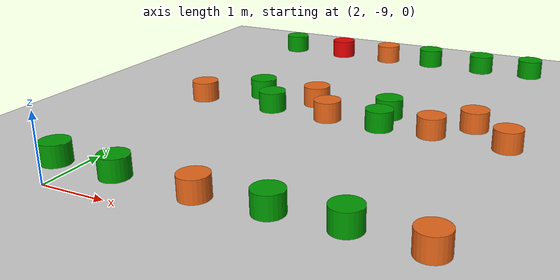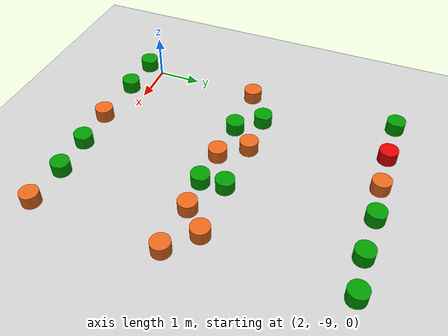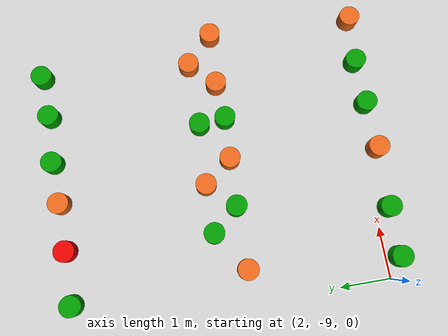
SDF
<sdf version="1.7">
 <world name="default">
  <model name="ground_plane">
   <static>1</static>
   <link name="link">
    <collision name="collision">
     <geometry><plane><normal>0 0 1</normal><size>100 100</size></plane></geometry>
     <surface>
      <contact><collide_bitmask>65535</collide_bitmask></contact>
      <friction><ode><mu>100</mu><mu2>50</mu2></ode></friction>
     </surface>
    </collision>
    <visual name="visual">
     <cast_shadows>0</cast_shadows>
     <geometry><plane><normal>0 0 1</normal><size>100 100</size></plane></geometry>
     <material>
      <script><uri>file://media/materials/scripts/gazebo.material</uri><name>Gazebo/Grey</name></script>
     </material>
    </visual>
   </link>
  </model>
  <model name="Test_pot_red">
   <link name="link_0">
    <inertial>
     <mass>0.044841</mass>
     <inertia>
      <ixx>0.00074807</ixx>
      <ixy>0</ixy>
      <ixz>0</ixz>
      <iyy>0.00074807</iyy>
      <iyz>0</iyz>
      <izz>0.00086495</izz>
     </inertia>
    </inertial>
    <pose>3e-06 1e-06 -0 0 -0 0</pose>
    <visual name="visual">
     <geometry><cylinder><radius>0.196415</radius><length>0.290612</length></cylinder></geometry>
     <material>
      <lighting>1</lighting>
      <script><uri>file://media/materials/scripts/gazebo.material</uri><name>Gazebo/Grey</name></script>
      <shader type="pixel"><normal_map>__default__</normal_map></shader>
      <ambient>0.3 0.3 0.3 1</ambient>
      <diffuse>0.9 0 0 1</diffuse>
      <specular>0.01 0.01 0.01 1</specular>
      <emissive>0 0 0 1</emissive>
     </material>
    </visual>
    <collision name="collision">
     <geometry><cylinder><radius>0.196415</radius><length>0.290612</length></cylinder></geometry>
     <surface>
      <friction>
       <ode><mu>1</mu><mu2>1</mu2><fdir1>0 0 0</fdir1><slip1>0</slip1><slip2>0</slip2></ode>
       <torsional>
        <coefficient>1</coefficient>
        <patch_radius>0</patch_radius>
        <surface_radius>0</surface_radius>
        <use_patch_radius>1</use_patch_radius>
        <ode><slip>0</slip></ode>
       </torsional>
      </friction>
      <bounce><restitution_coefficient>0</restitution_coefficient><threshold>1e+06</threshold></bounce>
      <contact>
       <collide_without_contact>0</collide_without_contact>
       <collide_without_contact_bitmask>1</collide_without_contact_bitmask>
       <collide_bitmask>1</collide_bitmask>
       <ode>
        <soft_cfm>0</soft_cfm>
        <soft_erp>0.2</soft_erp>
        <kp>1e+13</kp>
        <kd>1</kd>
        <max_vel>0.01</max_vel>
        <min_depth>0</min_depth>
       </ode>
       <bullet>
        <split_impulse>1</split_impulse>
        <split_impulse_penetration_threshold>-0.01</split_impulse_penetration_threshold>
        <soft_cfm>0</soft_cfm>
        <soft_erp>0.2</soft_erp>
        <kp>1e+13</kp>
        <kd>1</kd>
       </bullet>
      </contact>
     </surface>
    </collision>
   </link>
   <static>0</static>
   <pose>3.5117 -3.04366 0.575586 3.8e-05 1e-06 -0.000459</pose>
  </model>
  <model name="Test_pot_orange_clone_4">
   <link name="link_0">
    <inertial>
     <mass>0.044841</mass>
     <inertia>
      <ixx>0.00074807</ixx>
      <ixy>0</ixy>
      <ixz>0</ixz>
      <iyy>0.00074807</iyy>
      <iyz>0</iyz>
      <izz>0.00086495</izz>
     </inertia>
    </inertial>
    <pose>3e-06 1e-06 -0 0 -0 0</pose>
    <visual name="visual">
     <geometry><cylinder><radius>0.196415</radius><length>0.290612</length></cylinder></geometry>
     <material>
      <lighting>1</lighting>
      <script><uri>file://media/materials/scripts/gazebo.material</uri><name>Gazebo/Grey</name></script>
      <shader type="pixel"><normal_map>__default__</normal_map></shader>
      <ambient>0.3 0.3 0.3 1</ambient>
      <diffuse>0.9 0.4 0.1 1</diffuse>
      <specular>0.01 0.01 0.01 1</specular>
      <emissive>0 0 0 1</emissive>
     </material>
    </visual>
    <collision name="collision">
     <geometry><cylinder><radius>0.196415</radius><length>0.290612</length></cylinder></geometry>
     <surface>
      <friction>
       <ode><mu>1</mu><mu2>1</mu2><fdir1>0 0 0</fdir1><slip1>0</slip1><slip2>0</slip2></ode>
       <torsional>
        <coefficient>1</coefficient>
        <patch_radius>0</patch_radius>
        <surface_radius>0</surface_radius>
        <use_patch_radius>1</use_patch_radius>
        <ode><slip>0</slip></ode>
       </torsional>
      </friction>
      <bounce><restitution_coefficient>0</restitution_coefficient><threshold>1e+06</threshold></bounce>
      <contact>
       <collide_without_contact>0</collide_without_contact>
       <collide_without_contact_bitmask>1</collide_without_contact_bitmask>
       <collide_bitmask>1</collide_bitmask>
       <ode>
        <soft_cfm>0</soft_cfm>
        <soft_erp>0.2</soft_erp>
        <kp>1e+13</kp>
        <kd>1</kd>
        <max_vel>0.01</max_vel>
        <min_depth>0</min_depth>
       </ode>
       <bullet>
        <split_impulse>1</split_impulse>
        <split_impulse_penetration_threshold>-0.01</split_impulse_penetration_threshold>
        <soft_cfm>0</soft_cfm>
        <soft_erp>0.2</soft_erp>
        <kp>1e+13</kp>
        <kd>1</kd>
       </bullet>
      </contact>
     </surface>
    </collision>
   </link>
   <static>0</static>
   <pose>4.4015 -3.02692 0.575586 3.8e-05 1e-06 -0.000459</pose>
  </model>
  <model name="Test_pot_orange_clone_6">
   <link name="link_0">
    <inertial>
     <mass>0.044841</mass>
     <inertia>
      <ixx>0.00074807</ixx>
      <ixy>0</ixy>
      <ixz>0</ixz>
      <iyy>0.00074807</iyy>
      <iyz>0</iyz>
      <izz>0.00086495</izz>
     </inertia>
    </inertial>
    <pose>3e-06 1e-06 -0 0 -0 0</pose>
    <visual name="visual">
     <geometry><cylinder><radius>0.196415</radius><length>0.290612</length></cylinder></geometry>
     <material>
      <lighting>1</lighting>
      <script><uri>file://media/materials/scripts/gazebo.material</uri><name>Gazebo/Grey</name></script>
      <shader type="pixel"><normal_map>__default__</normal_map></shader>
      <ambient>0.3 0.3 0.3 1</ambient>
      <diffuse>0.9 0.4 0.1 1</diffuse>
      <specular>0.01 0.01 0.01 1</specular>
      <emissive>0 0 0 1</emissive>
     </material>
    </visual>
    <collision name="collision">
     <geometry><cylinder><radius>0.196415</radius><length>0.290612</length></cylinder></geometry>
     <surface>
      <friction>
       <ode><mu>1</mu><mu2>1</mu2><fdir1>0 0 0</fdir1><slip1>0</slip1><slip2>0</slip2></ode>
       <torsional>
        <coefficient>1</coefficient>
        <patch_radius>0</patch_radius>
        <surface_radius>0</surface_radius>
        <use_patch_radius>1</use_patch_radius>
        <ode><slip>0</slip></ode>
       </torsional>
      </friction>
      <bounce><restitution_coefficient>0</restitution_coefficient><threshold>1e+06</threshold></bounce>
      <contact>
       <collide_without_contact>0</collide_without_contact>
       <collide_without_contact_bitmask>1</collide_without_contact_bitmask>
       <collide_bitmask>1</collide_bitmask>
       <ode>
        <soft_cfm>0</soft_cfm>
        <soft_erp>0.2</soft_erp>
        <kp>1e+13</kp>
        <kd>1</kd>
        <max_vel>0.01</max_vel>
        <min_depth>0</min_depth>
       </ode>
       <bullet>
        <split_impulse>1</split_impulse>
        <split_impulse_penetration_threshold>-0.01</split_impulse_penetration_threshold>
        <soft_cfm>0</soft_cfm>
        <soft_erp>0.2</soft_erp>
        <kp>1e+13</kp>
        <kd>1</kd>
       </bullet>
      </contact>
     </surface>
    </collision>
   </link>
   <static>0</static>
   <pose>4.48693 -9.13712 0.575586 3.8e-05 1e-06 -0.000459</pose>
  </model>
  <model name="Test_pot_orange_clone_7">
   <link name="link_0">
    <inertial>
     <mass>0.044841</mass>
     <inertia>
      <ixx>0.00074807</ixx>
      <ixy>0</ixy>
      <ixz>0</ixz>
      <iyy>0.00074807</iyy>
      <iyz>0</iyz>
      <izz>0.00086495</izz>
     </inertia>
    </inertial>
    <pose>3e-06 1e-06 -0 0 -0 0</pose>
    <visual name="visual">
     <geometry><cylinder><radius>0.196415</radius><length>0.290612</length></cylinder></geometry>
     <material>
      <lighting>1</lighting>
      <script><uri>file://media/materials/scripts/gazebo.material</uri><name>Gazebo/Grey</name></script>
      <shader type="pixel"><normal_map>__default__</normal_map></shader>
      <ambient>0.3 0.3 0.3 1</ambient>
      <diffuse>0.9 0.4 0.1 1</diffuse>
      <specular>0.01 0.01 0.01 1</specular>
      <emissive>0 0 0 1</emissive>
     </material>
    </visual>
    <collision name="collision">
     <geometry><cylinder><radius>0.196415</radius><length>0.290612</length></cylinder></geometry>
     <surface>
      <friction>
       <ode><mu>1</mu><mu2>1</mu2><fdir1>0 0 0</fdir1><slip1>0</slip1><slip2>0</slip2></ode>
       <torsional>
        <coefficient>1</coefficient>
        <patch_radius>0</patch_radius>
        <surface_radius>0</surface_radius>
        <use_patch_radius>1</use_patch_radius>
        <ode><slip>0</slip></ode>
       </torsional>
      </friction>
      <bounce><restitution_coefficient>0</restitution_coefficient><threshold>1e+06</threshold></bounce>
      <contact>
       <collide_without_contact>0</collide_without_contact>
       <collide_without_contact_bitmask>1</collide_without_contact_bitmask>
       <collide_bitmask>1</collide_bitmask>
       <ode>
        <soft_cfm>0</soft_cfm>
        <soft_erp>0.2</soft_erp>
        <kp>1e+13</kp>
        <kd>1</kd>
        <max_vel>0.01</max_vel>
        <min_depth>0</min_depth>
       </ode>
       <bullet>
        <split_impulse>1</split_impulse>
        <split_impulse_penetration_threshold>-0.01</split_impulse_penetration_threshold>
        <soft_cfm>0</soft_cfm>
        <soft_erp>0.2</soft_erp>
        <kp>1e+13</kp>
        <kd>1</kd>
       </bullet>
      </contact>
     </surface>
    </collision>
   </link>
   <static>0</static>
   <pose>7.17621 -9.14948 0.575586 3.8e-05 1e-06 -0.000459</pose>
  </model>
  <model name="Test_pot_orange_clone_9">
   <link name="link_0">
    <inertial>
     <mass>0.044841</mass>
     <inertia>
      <ixx>0.00074807</ixx>
      <ixy>0</ixy>
      <ixz>0</ixz>
      <iyy>0.00074807</iyy>
      <iyz>0</iyz>
      <izz>0.00086495</izz>
     </inertia>
    </inertial>
    <pose>3e-06 1e-06 -0 0 -0 0</pose>
    <visual name="visual">
     <geometry><cylinder><radius>0.196415</radius><length>0.290612</length></cylinder></geometry>
     <material>
      <lighting>1</lighting>
      <script><uri>file://media/materials/scripts/gazebo.material</uri><name>Gazebo/Grey</name></script>
      <shader type="pixel"><normal_map>__default__</normal_map></shader>
      <ambient>0.3 0.3 0.3 1</ambient>
      <diffuse>0.9 0.4 0.1 1</diffuse>
      <specular>0.01 0.01 0.01 1</specular>
      <emissive>0 0 0 1</emissive>
     </material>
    </visual>
    <collision name="collision">
     <geometry><cylinder><radius>0.196415</radius><length>0.290612</length></cylinder></geometry>
     <surface>
      <friction>
       <ode><mu>1</mu><mu2>1</mu2><fdir1>0 0 0</fdir1><slip1>0</slip1><slip2>0</slip2></ode>
       <torsional>
        <coefficient>1</coefficient>
        <patch_radius>0</patch_radius>
        <surface_radius>0</surface_radius>
        <use_patch_radius>1</use_patch_radius>
        <ode><slip>0</slip></ode>
       </torsional>
      </friction>
      <bounce><restitution_coefficient>0</restitution_coefficient><threshold>1e+06</threshold></bounce>
      <contact>
       <collide_without_contact>0</collide_without_contact>
       <collide_without_contact_bitmask>1</collide_without_contact_bitmask>
       <collide_bitmask>1</collide_bitmask>
       <ode>
        <soft_cfm>0</soft_cfm>
        <soft_erp>0.2</soft_erp>
        <kp>1e+13</kp>
        <kd>1</kd>
        <max_vel>0.01</max_vel>
        <min_depth>0</min_depth>
       </ode>
       <bullet>
        <split_impulse>1</split_impulse>
        <split_impulse_penetration_threshold>-0.01</split_impulse_penetration_threshold>
        <soft_cfm>0</soft_cfm>
        <soft_erp>0.2</soft_erp>
        <kp>1e+13</kp>
        <kd>1</kd>
       </bullet>
      </contact>
     </surface>
    </collision>
   </link>
   <static>0</static>
   <pose>2.64433 -6.28889 0.575586 3.8e-05 1e-06 -0.000459</pose>
  </model>
  <model name="Test_pot_orange_clone_10">
   <link name="link_0">
    <inertial>
     <mass>0.044841</mass>
     <inertia>
      <ixx>0.00074807</ixx>
      <ixy>0</ixy>
      <ixz>0</ixz>
      <iyy>0.00074807</iyy>
      <iyz>0</iyz>
      <izz>0.00086495</izz>
     </inertia>
    </inertial>
    <pose>3e-06 1e-06 -0 0 -0 0</pose>
    <visual name="visual">
     <geometry><cylinder><radius>0.196415</radius><length>0.290612</length></cylinder></geometry>
     <material>
      <lighting>1</lighting>
      <script><uri>file://media/materials/scripts/gazebo.material</uri><name>Gazebo/Grey</name></script>
      <shader type="pixel"><normal_map>__default__</normal_map></shader>
      <ambient>0.3 0.3 0.3 1</ambient>
      <diffuse>0.9 0.4 0.1 1</diffuse>
      <specular>0.01 0.01 0.01 1</specular>
      <emissive>0 0 0 1</emissive>
     </material>
    </visual>
    <collision name="collision">
     <geometry><cylinder><radius>0.196415</radius><length>0.290612</length></cylinder></geometry>
     <surface>
      <friction>
       <ode><mu>1</mu><mu2>1</mu2><fdir1>0 0 0</fdir1><slip1>0</slip1><slip2>0</slip2></ode>
       <torsional>
        <coefficient>1</coefficient>
        <patch_radius>0</patch_radius>
        <surface_radius>0</surface_radius>
        <use_patch_radius>1</use_patch_radius>
        <ode><slip>0</slip></ode>
       </torsional>
      </friction>
      <bounce><restitution_coefficient>0</restitution_coefficient><threshold>1e+06</threshold></bounce>
      <contact>
       <collide_without_contact>0</collide_without_contact>
       <collide_without_contact_bitmask>1</collide_without_contact_bitmask>
       <collide_bitmask>1</collide_bitmask>
       <ode>
        <soft_cfm>0</soft_cfm>
        <soft_erp>0.2</soft_erp>
        <kp>1e+13</kp>
        <kd>1</kd>
        <max_vel>0.01</max_vel>
        <min_depth>0</min_depth>
       </ode>
       <bullet>
        <split_impulse>1</split_impulse>
        <split_impulse_penetration_threshold>-0.01</split_impulse_penetration_threshold>
        <soft_cfm>0</soft_cfm>
        <soft_erp>0.2</soft_erp>
        <kp>1e+13</kp>
        <kd>1</kd>
       </bullet>
      </contact>
     </surface>
    </collision>
   </link>
   <static>0</static>
   <pose>4.30582 -5.78421 0.575586 3.8e-05 1e-06 -0.000459</pose>
  </model>
  <model name="Test_pot_orange_clone_11">
   <link name="link_0">
    <inertial>
     <mass>0.044841</mass>
     <inertia>
      <ixx>0.00074807</ixx>
      <ixy>0</ixy>
      <ixz>0</ixz>
      <iyy>0.00074807</iyy>
      <iyz>0</iyz>
      <izz>0.00086495</izz>
     </inertia>
    </inertial>
    <pose>3e-06 1e-06 -0 0 -0 0</pose>
    <visual name="visual">
     <geometry><cylinder><radius>0.196415</radius><length>0.290612</length></cylinder></geometry>
     <material>
      <lighting>1</lighting>
      <script><uri>file://media/materials/scripts/gazebo.material</uri><name>Gazebo/Grey</name></script>
      <shader type="pixel"><normal_map>__default__</normal_map></shader>
      <ambient>0.3 0.3 0.3 1</ambient>
      <diffuse>0.9 0.4 0.1 1</diffuse>
      <specular>0.01 0.01 0.01 1</specular>
      <emissive>0 0 0 1</emissive>
     </material>
    </visual>
    <collision name="collision">
     <geometry><cylinder><radius>0.196415</radius><length>0.290612</length></cylinder></geometry>
     <surface>
      <friction>
       <ode><mu>1</mu><mu2>1</mu2><fdir1>0 0 0</fdir1><slip1>0</slip1><slip2>0</slip2></ode>
       <torsional>
        <coefficient>1</coefficient>
        <patch_radius>0</patch_radius>
        <surface_radius>0</surface_radius>
        <use_patch_radius>1</use_patch_radius>
        <ode><slip>0</slip></ode>
       </torsional>
      </friction>
      <bounce><restitution_coefficient>0</restitution_coefficient><threshold>1e+06</threshold></bounce>
      <contact>
       <collide_without_contact>0</collide_without_contact>
       <collide_without_contact_bitmask>1</collide_without_contact_bitmask>
       <collide_bitmask>1</collide_bitmask>
       <ode>
        <soft_cfm>0</soft_cfm>
        <soft_erp>0.2</soft_erp>
        <kp>1e+13</kp>
        <kd>1</kd>
        <max_vel>0.01</max_vel>
        <min_depth>0</min_depth>
       </ode>
       <bullet>
        <split_impulse>1</split_impulse>
        <split_impulse_penetration_threshold>-0.01</split_impulse_penetration_threshold>
        <soft_cfm>0</soft_cfm>
        <soft_erp>0.2</soft_erp>
        <kp>1e+13</kp>
        <kd>1</kd>
       </bullet>
      </contact>
     </surface>
    </collision>
   </link>
   <static>0</static>
   <pose>4.73132 -6.31089 0.575586 3.8e-05 1e-06 -0.000459</pose>
  </model>
  <model name="Test_pot_orange_clone_12">
   <link name="link_0">
    <inertial>
     <mass>0.044841</mass>
     <inertia>
      <ixx>0.00074807</ixx>
      <ixy>0</ixy>
      <ixz>0</ixz>
      <iyy>0.00074807</iyy>
      <iyz>0</iyz>
      <izz>0.00086495</izz>
     </inertia>
    </inertial>
    <pose>3e-06 1e-06 -0 0 -0 0</pose>
    <visual name="visual">
     <geometry><cylinder><radius>0.196415</radius><length>0.290612</length></cylinder></geometry>
     <material>
      <lighting>1</lighting>
      <script><uri>file://media/materials/scripts/gazebo.material</uri><name>Gazebo/Grey</name></script>
      <shader type="pixel"><normal_map>__default__</normal_map></shader>
      <ambient>0.3 0.3 0.3 1</ambient>
      <diffuse>0.9 0.4 0.1 1</diffuse>
      <specular>0.01 0.01 0.01 1</specular>
      <emissive>0 0 0 1</emissive>
     </material>
    </visual>
    <collision name="collision">
     <geometry><cylinder><radius>0.196415</radius><length>0.290612</length></cylinder></geometry>
     <surface>
      <friction>
       <ode><mu>1</mu><mu2>1</mu2><fdir1>0 0 0</fdir1><slip1>0</slip1><slip2>0</slip2></ode>
       <torsional>
        <coefficient>1</coefficient>
        <patch_radius>0</patch_radius>
        <surface_radius>0</surface_radius>
        <use_patch_radius>1</use_patch_radius>
        <ode><slip>0</slip></ode>
       </torsional>
      </friction>
      <bounce><restitution_coefficient>0</restitution_coefficient><threshold>1e+06</threshold></bounce>
      <contact>
       <collide_without_contact>0</collide_without_contact>
       <collide_without_contact_bitmask>1</collide_without_contact_bitmask>
       <collide_bitmask>1</collide_bitmask>
       <ode>
        <soft_cfm>0</soft_cfm>
        <soft_erp>0.2</soft_erp>
        <kp>1e+13</kp>
        <kd>1</kd>
        <max_vel>0.01</max_vel>
        <min_depth>0</min_depth>
       </ode>
       <bullet>
        <split_impulse>1</split_impulse>
        <split_impulse_penetration_threshold>-0.01</split_impulse_penetration_threshold>
        <soft_cfm>0</soft_cfm>
        <soft_erp>0.2</soft_erp>
        <kp>1e+13</kp>
        <kd>1</kd>
       </bullet>
      </contact>
     </surface>
    </collision>
   </link>
   <static>0</static>
   <pose>6.71885 -5.82743 0.575586 3.8e-05 1e-06 -0.000459</pose>
  </model>
  <model name="Test_pot_orange_clone_13">
   <link name="link_0">
    <inertial>
     <mass>0.044841</mass>
     <inertia>
      <ixx>0.00074807</ixx>
      <ixy>0</ixy>
      <ixz>0</ixz>
      <iyy>0.00074807</iyy>
      <iyz>0</iyz>
      <izz>0.00086495</izz>
     </inertia>
    </inertial>
    <pose>3e-06 1e-06 -0 0 -0 0</pose>
    <visual name="visual">
     <geometry><cylinder><radius>0.196415</radius><length>0.290612</length></cylinder></geometry>
     <material>
      <lighting>1</lighting>
      <script><uri>file://media/materials/scripts/gazebo.material</uri><name>Gazebo/Grey</name></script>
      <shader type="pixel"><normal_map>__default__</normal_map></shader>
      <ambient>0.3 0.3 0.3 1</ambient>
      <diffuse>0.9 0.4 0.1 1</diffuse>
      <specular>0.01 0.01 0.01 1</specular>
      <emissive>0 0 0 1</emissive>
     </material>
    </visual>
    <collision name="collision">
     <geometry><cylinder><radius>0.196415</radius><length>0.290612</length></cylinder></geometry>
     <surface>
      <friction>
       <ode><mu>1</mu><mu2>1</mu2><fdir1>0 0 0</fdir1><slip1>0</slip1><slip2>0</slip2></ode>
       <torsional>
        <coefficient>1</coefficient>
        <patch_radius>0</patch_radius>
        <surface_radius>0</surface_radius>
        <use_patch_radius>1</use_patch_radius>
        <ode><slip>0</slip></ode>
       </torsional>
      </friction>
      <bounce><restitution_coefficient>0</restitution_coefficient><threshold>1e+06</threshold></bounce>
      <contact>
       <collide_without_contact>0</collide_without_contact>
       <collide_without_contact_bitmask>1</collide_without_contact_bitmask>
       <collide_bitmask>1</collide_bitmask>
       <ode>
        <soft_cfm>0</soft_cfm>
        <soft_erp>0.2</soft_erp>
        <kp>1e+13</kp>
        <kd>1</kd>
        <max_vel>0.01</max_vel>
        <min_depth>0</min_depth>
       </ode>
       <bullet>
        <split_impulse>1</split_impulse>
        <split_impulse_penetration_threshold>-0.01</split_impulse_penetration_threshold>
        <soft_cfm>0</soft_cfm>
        <soft_erp>0.2</soft_erp>
        <kp>1e+13</kp>
        <kd>1</kd>
       </bullet>
      </contact>
     </surface>
    </collision>
   </link>
   <static>0</static>
   <pose>6.25189 -6.29243 0.575586 3.8e-05 1e-06 -0.000459</pose>
  </model>
  <model name="Test_pot_orange_clone_14">
   <link name="link_0">
    <inertial>
     <mass>0.044841</mass>
     <inertia>
      <ixx>0.00074807</ixx>
      <ixy>0</ixy>
      <ixz>0</ixz>
      <iyy>0.00074807</iyy>
      <iyz>0</iyz>
      <izz>0.00086495</izz>
     </inertia>
    </inertial>
    <pose>3e-06 1e-06 -0 0 -0 0</pose>
    <visual name="visual">
     <geometry><cylinder><radius>0.196415</radius><length>0.290612</length></cylinder></geometry>
     <material>
      <lighting>1</lighting>
      <script><uri>file://media/materials/scripts/gazebo.material</uri><name>Gazebo/Grey</name></script>
      <shader type="pixel"><normal_map>__default__</normal_map></shader>
      <ambient>0.3 0.3 0.3 1</ambient>
      <diffuse>0.9 0.4 0.1 1</diffuse>
      <specular>0.01 0.01 0.01 1</specular>
      <emissive>0 0 0 1</emissive>
     </material>
    </visual>
    <collision name="collision">
     <geometry><cylinder><radius>0.196415</radius><length>0.290612</length></cylinder></geometry>
     <surface>
      <friction>
       <ode><mu>1</mu><mu2>1</mu2><fdir1>0 0 0</fdir1><slip1>0</slip1><slip2>0</slip2></ode>
       <torsional>
        <coefficient>1</coefficient>
        <patch_radius>0</patch_radius>
        <surface_radius>0</surface_radius>
        <use_patch_radius>1</use_patch_radius>
        <ode><slip>0</slip></ode>
       </torsional>
      </friction>
      <bounce><restitution_coefficient>0</restitution_coefficient><threshold>1e+06</threshold></bounce>
      <contact>
       <collide_without_contact>0</collide_without_contact>
       <collide_without_contact_bitmask>1</collide_without_contact_bitmask>
       <collide_bitmask>1</collide_bitmask>
       <ode>
        <soft_cfm>0</soft_cfm>
        <soft_erp>0.2</soft_erp>
        <kp>1e+13</kp>
        <kd>1</kd>
        <max_vel>0.01</max_vel>
        <min_depth>0</min_depth>
       </ode>
       <bullet>
        <split_impulse>1</split_impulse>
        <split_impulse_penetration_threshold>-0.01</split_impulse_penetration_threshold>
        <soft_cfm>0</soft_cfm>
        <soft_erp>0.2</soft_erp>
        <kp>1e+13</kp>
        <kd>1</kd>
       </bullet>
      </contact>
     </surface>
    </collision>
   </link>
   <static>0</static>
   <pose>7.27485 -6.33813 0.575586 3.8e-05 1e-06 -0.000459</pose>
  </model>
  <model name="Test_pot_green_clone_26">
   <link name="link_0">
    <inertial>
     <mass>0.044841</mass>
     <inertia>
      <ixx>0.00074807</ixx>
      <ixy>0</ixy>
      <ixz>0</ixz>
      <iyy>0.00074807</iyy>
      <iyz>0</iyz>
      <izz>0.00086495</izz>
     </inertia>
    </inertial>
    <pose>3e-06 1e-06 0 0 -0 0</pose>
    <visual name="visual">
     <geometry><cylinder><radius>0.196415</radius><length>0.290612</length></cylinder></geometry>
     <material>
      <lighting>1</lighting>
      <script><uri>file://media/materials/scripts/gazebo.material</uri><name>Gazebo/Grey</name></script>
      <shader type="pixel"><normal_map>__default__</normal_map></shader>
      <diffuse>0 0.6 0 0</diffuse>
      <ambient>0.3 0.3 0.3 1</ambient>
      <specular>0.01 0.01 0.01 1</specular>
      <emissive>0 0 0 1</emissive>
     </material>
    </visual>
    <collision name="collision">
     <geometry><cylinder><radius>0.196415</radius><length>0.290612</length></cylinder></geometry>
     <surface>
      <friction>
       <ode><mu>1</mu><mu2>1</mu2><fdir1>0 0 0</fdir1><slip1>0</slip1><slip2>0</slip2></ode>
       <torsional>
        <coefficient>1</coefficient>
        <patch_radius>0</patch_radius>
        <surface_radius>0</surface_radius>
        <use_patch_radius>1</use_patch_radius>
        <ode><slip>0</slip></ode>
       </torsional>
      </friction>
      <bounce><restitution_coefficient>0</restitution_coefficient><threshold>1e+06</threshold></bounce>
      <contact>
       <collide_without_contact>0</collide_without_contact>
       <collide_without_contact_bitmask>1</collide_without_contact_bitmask>
       <collide_bitmask>1</collide_bitmask>
       <ode>
        <soft_cfm>0</soft_cfm>
        <soft_erp>0.2</soft_erp>
        <kp>1e+13</kp>
        <kd>1</kd>
        <max_vel>0.01</max_vel>
        <min_depth>0</min_depth>
       </ode>
       <bullet>
        <split_impulse>1</split_impulse>
        <split_impulse_penetration_threshold>-0.01</split_impulse_penetration_threshold>
        <soft_cfm>0</soft_cfm>
        <soft_erp>0.2</soft_erp>
        <kp>1e+13</kp>
        <kd>1</kd>
       </bullet>
      </contact>
     </surface>
    </collision>
   </link>
   <static>0</static>
   <pose>2.53724 -3.04907 0.575588 1e-06 6e-06 -0.000489</pose>
  </model>
  <model name="Test_pot_green_clone_27">
   <link name="link_0">
    <inertial>
     <mass>0.044841</mass>
     <inertia>
      <ixx>0.00074807</ixx>
      <ixy>0</ixy>
      <ixz>0</ixz>
      <iyy>0.00074807</iyy>
      <iyz>0</iyz>
      <izz>0.00086495</izz>
     </inertia>
    </inertial>
    <pose>3e-06 1e-06 0 0 -0 0</pose>
    <visual name="visual">
     <geometry><cylinder><radius>0.196415</radius><length>0.290612</length></cylinder></geometry>
     <material>
      <lighting>1</lighting>
      <script><uri>file://media/materials/scripts/gazebo.material</uri><name>Gazebo/Grey</name></script>
      <shader type="pixel"><normal_map>__default__</normal_map></shader>
      <diffuse>0 0.6 0 0</diffuse>
      <ambient>0.3 0.3 0.3 1</ambient>
      <specular>0.01 0.01 0.01 1</specular>
      <emissive>0 0 0 1</emissive>
     </material>
    </visual>
    <collision name="collision">
     <geometry><cylinder><radius>0.196415</radius><length>0.290612</length></cylinder></geometry>
     <surface>
      <friction>
       <ode><mu>1</mu><mu2>1</mu2><fdir1>0 0 0</fdir1><slip1>0</slip1><slip2>0</slip2></ode>
       <torsional>
        <coefficient>1</coefficient>
        <patch_radius>0</patch_radius>
        <surface_radius>0</surface_radius>
        <use_patch_radius>1</use_patch_radius>
        <ode><slip>0</slip></ode>
       </torsional>
      </friction>
      <bounce><restitution_coefficient>0</restitution_coefficient><threshold>1e+06</threshold></bounce>
      <contact>
       <collide_without_contact>0</collide_without_contact>
       <collide_without_contact_bitmask>1</collide_without_contact_bitmask>
       <collide_bitmask>1</collide_bitmask>
       <ode>
        <soft_cfm>0</soft_cfm>
        <soft_erp>0.2</soft_erp>
        <kp>1e+13</kp>
        <kd>1</kd>
        <max_vel>0.01</max_vel>
        <min_depth>0</min_depth>
       </ode>
       <bullet>
        <split_impulse>1</split_impulse>
        <split_impulse_penetration_threshold>-0.01</split_impulse_penetration_threshold>
        <soft_cfm>0</soft_cfm>
        <soft_erp>0.2</soft_erp>
        <kp>1e+13</kp>
        <kd>1</kd>
       </bullet>
      </contact>
     </surface>
    </collision>
   </link>
   <static>0</static>
   <pose>5.19314 -2.97922 0.575588 1e-06 6e-06 -0.000489</pose>
  </model>
  <model name="Test_pot_green_clone_28">
   <link name="link_0">
    <inertial>
     <mass>0.044841</mass>
     <inertia>
      <ixx>0.00074807</ixx>
      <ixy>0</ixy>
      <ixz>0</ixz>
      <iyy>0.00074807</iyy>
      <iyz>0</iyz>
      <izz>0.00086495</izz>
     </inertia>
    </inertial>
    <pose>3e-06 1e-06 0 0 -0 0</pose>
    <visual name="visual">
     <geometry><cylinder><radius>0.196415</radius><length>0.290612</length></cylinder></geometry>
     <material>
      <lighting>1</lighting>
      <script><uri>file://media/materials/scripts/gazebo.material</uri><name>Gazebo/Grey</name></script>
      <shader type="pixel"><normal_map>__default__</normal_map></shader>
      <diffuse>0 0.6 0 0</diffuse>
      <ambient>0.3 0.3 0.3 1</ambient>
      <specular>0.01 0.01 0.01 1</specular>
      <emissive>0 0 0 1</emissive>
     </material>
    </visual>
    <collision name="collision">
     <geometry><cylinder><radius>0.196415</radius><length>0.290612</length></cylinder></geometry>
     <surface>
      <friction>
       <ode><mu>1</mu><mu2>1</mu2><fdir1>0 0 0</fdir1><slip1>0</slip1><slip2>0</slip2></ode>
       <torsional>
        <coefficient>1</coefficient>
        <patch_radius>0</patch_radius>
        <surface_radius>0</surface_radius>
        <use_patch_radius>1</use_patch_radius>
        <ode><slip>0</slip></ode>
       </torsional>
      </friction>
      <bounce><restitution_coefficient>0</restitution_coefficient><threshold>1e+06</threshold></bounce>
      <contact>
       <collide_without_contact>0</collide_without_contact>
       <collide_without_contact_bitmask>1</collide_without_contact_bitmask>
       <collide_bitmask>1</collide_bitmask>
       <ode>
        <soft_cfm>0</soft_cfm>
        <soft_erp>0.2</soft_erp>
        <kp>1e+13</kp>
        <kd>1</kd>
        <max_vel>0.01</max_vel>
        <min_depth>0</min_depth>
       </ode>
       <bullet>
        <split_impulse>1</split_impulse>
        <split_impulse_penetration_threshold>-0.01</split_impulse_penetration_threshold>
        <soft_cfm>0</soft_cfm>
        <soft_erp>0.2</soft_erp>
        <kp>1e+13</kp>
        <kd>1</kd>
       </bullet>
      </contact>
     </surface>
    </collision>
   </link>
   <static>0</static>
   <pose>6.10973 -3.0085 0.575588 1e-06 6e-06 -0.000489</pose>
  </model>
  <model name="Test_pot_green_clone_29">
   <link name="link_0">
    <inertial>
     <mass>0.044841</mass>
     <inertia>
      <ixx>0.00074807</ixx>
      <ixy>0</ixy>
      <ixz>0</ixz>
      <iyy>0.00074807</iyy>
      <iyz>0</iyz>
      <izz>0.00086495</izz>
     </inertia>
    </inertial>
    <pose>3e-06 1e-06 0 0 -0 0</pose>
    <visual name="visual">
     <geometry><cylinder><radius>0.196415</radius><length>0.290612</length></cylinder></geometry>
     <material>
      <lighting>1</lighting>
      <script><uri>file://media/materials/scripts/gazebo.material</uri><name>Gazebo/Grey</name></script>
      <shader type="pixel"><normal_map>__default__</normal_map></shader>
      <diffuse>0 0.6 0 0</diffuse>
      <ambient>0.3 0.3 0.3 1</ambient>
      <specular>0.01 0.01 0.01 1</specular>
      <emissive>0 0 0 1</emissive>
     </material>
    </visual>
    <collision name="collision">
     <geometry><cylinder><radius>0.196415</radius><length>0.290612</length></cylinder></geometry>
     <surface>
      <friction>
       <ode><mu>1</mu><mu2>1</mu2><fdir1>0 0 0</fdir1><slip1>0</slip1><slip2>0</slip2></ode>
       <torsional>
        <coefficient>1</coefficient>
        <patch_radius>0</patch_radius>
        <surface_radius>0</surface_radius>
        <use_patch_radius>1</use_patch_radius>
        <ode><slip>0</slip></ode>
       </torsional>
      </friction>
      <bounce><restitution_coefficient>0</restitution_coefficient><threshold>1e+06</threshold></bounce>
      <contact>
       <collide_without_contact>0</collide_without_contact>
       <collide_without_contact_bitmask>1</collide_without_contact_bitmask>
       <collide_bitmask>1</collide_bitmask>
       <ode>
        <soft_cfm>0</soft_cfm>
        <soft_erp>0.2</soft_erp>
        <kp>1e+13</kp>
        <kd>1</kd>
        <max_vel>0.01</max_vel>
        <min_depth>0</min_depth>
       </ode>
       <bullet>
        <split_impulse>1</split_impulse>
        <split_impulse_penetration_threshold>-0.01</split_impulse_penetration_threshold>
        <soft_cfm>0</soft_cfm>
        <soft_erp>0.2</soft_erp>
        <kp>1e+13</kp>
        <kd>1</kd>
       </bullet>
      </contact>
     </surface>
    </collision>
   </link>
   <static>0</static>
   <pose>6.92926 -2.95845 0.575588 1e-06 6e-06 -0.000489</pose>
  </model>
  <model name="Test_pot_green_clone_30">
   <link name="link_0">
    <inertial>
     <mass>0.044841</mass>
     <inertia>
      <ixx>0.00074807</ixx>
      <ixy>0</ixy>
      <ixz>0</ixz>
      <iyy>0.00074807</iyy>
      <iyz>0</iyz>
      <izz>0.00086495</izz>
     </inertia>
    </inertial>
    <pose>3e-06 1e-06 0 0 -0 0</pose>
    <visual name="visual">
     <geometry><cylinder><radius>0.196415</radius><length>0.290612</length></cylinder></geometry>
     <material>
      <lighting>1</lighting>
      <script><uri>file://media/materials/scripts/gazebo.material</uri><name>Gazebo/Grey</name></script>
      <shader type="pixel"><normal_map>__default__</normal_map></shader>
      <diffuse>0 0.6 0 0</diffuse>
      <ambient>0.3 0.3 0.3 1</ambient>
      <specular>0.01 0.01 0.01 1</specular>
      <emissive>0 0 0 1</emissive>
     </material>
    </visual>
    <collision name="collision">
     <geometry><cylinder><radius>0.196415</radius><length>0.290612</length></cylinder></geometry>
     <surface>
      <friction>
       <ode><mu>1</mu><mu2>1</mu2><fdir1>0 0 0</fdir1><slip1>0</slip1><slip2>0</slip2></ode>
       <torsional>
        <coefficient>1</coefficient>
        <patch_radius>0</patch_radius>
        <surface_radius>0</surface_radius>
        <use_patch_radius>1</use_patch_radius>
        <ode><slip>0</slip></ode>
       </torsional>
      </friction>
      <bounce><restitution_coefficient>0</restitution_coefficient><threshold>1e+06</threshold></bounce>
      <contact>
       <collide_without_contact>0</collide_without_contact>
       <collide_without_contact_bitmask>1</collide_without_contact_bitmask>
       <collide_bitmask>1</collide_bitmask>
       <ode>
        <soft_cfm>0</soft_cfm>
        <soft_erp>0.2</soft_erp>
        <kp>1e+13</kp>
        <kd>1</kd>
        <max_vel>0.01</max_vel>
        <min_depth>0</min_depth>
       </ode>
       <bullet>
        <split_impulse>1</split_impulse>
        <split_impulse_penetration_threshold>-0.01</split_impulse_penetration_threshold>
        <soft_cfm>0</soft_cfm>
        <soft_erp>0.2</soft_erp>
        <kp>1e+13</kp>
        <kd>1</kd>
       </bullet>
      </contact>
     </surface>
    </collision>
   </link>
   <static>0</static>
   <pose>3.38621 -5.78933 0.575588 1e-06 6e-06 -0.000489</pose>
  </model>
  <model name="Test_pot_green_clone_31">
   <link name="link_0">
    <inertial>
     <mass>0.044841</mass>
     <inertia>
      <ixx>0.00074807</ixx>
      <ixy>0</ixy>
      <ixz>0</ixz>
      <iyy>0.00074807</iyy>
      <iyz>0</iyz>
      <izz>0.00086495</izz>
     </inertia>
    </inertial>
    <pose>3e-06 1e-06 0 0 -0 0</pose>
    <visual name="visual">
     <geometry><cylinder><radius>0.196415</radius><length>0.290612</length></cylinder></geometry>
     <material>
      <lighting>1</lighting>
      <script><uri>file://media/materials/scripts/gazebo.material</uri><name>Gazebo/Grey</name></script>
      <shader type="pixel"><normal_map>__default__</normal_map></shader>
      <diffuse>0 0.6 0 0</diffuse>
      <ambient>0.3 0.3 0.3 1</ambient>
      <specular>0.01 0.01 0.01 1</specular>
      <emissive>0 0 0 1</emissive>
     </material>
    </visual>
    <collision name="collision">
     <geometry><cylinder><radius>0.196415</radius><length>0.290612</length></cylinder></geometry>
     <surface>
      <friction>
       <ode><mu>1</mu><mu2>1</mu2><fdir1>0 0 0</fdir1><slip1>0</slip1><slip2>0</slip2></ode>
       <torsional>
        <coefficient>1</coefficient>
        <patch_radius>0</patch_radius>
        <surface_radius>0</surface_radius>
        <use_patch_radius>1</use_patch_radius>
        <ode><slip>0</slip></ode>
       </torsional>
      </friction>
      <bounce><restitution_coefficient>0</restitution_coefficient><threshold>1e+06</threshold></bounce>
      <contact>
       <collide_without_contact>0</collide_without_contact>
       <collide_without_contact_bitmask>1</collide_without_contact_bitmask>
       <collide_bitmask>1</collide_bitmask>
       <ode>
        <soft_cfm>0</soft_cfm>
        <soft_erp>0.2</soft_erp>
        <kp>1e+13</kp>
        <kd>1</kd>
        <max_vel>0.01</max_vel>
        <min_depth>0</min_depth>
       </ode>
       <bullet>
        <split_impulse>1</split_impulse>
        <split_impulse_penetration_threshold>-0.01</split_impulse_penetration_threshold>
        <soft_cfm>0</soft_cfm>
        <soft_erp>0.2</soft_erp>
        <kp>1e+13</kp>
        <kd>1</kd>
       </bullet>
      </contact>
     </surface>
    </collision>
   </link>
   <static>0</static>
   <pose>3.82036 -6.27927 0.575588 1e-06 6e-06 -0.000489</pose>
  </model>
  <model name="Test_pot_green_clone_32">
   <link name="link_0">
    <inertial>
     <mass>0.044841</mass>
     <inertia>
      <ixx>0.00074807</ixx>
      <ixy>0</ixy>
      <ixz>0</ixz>
      <iyy>0.00074807</iyy>
      <iyz>0</iyz>
      <izz>0.00086495</izz>
     </inertia>
    </inertial>
    <pose>3e-06 1e-06 0 0 -0 0</pose>
    <visual name="visual">
     <geometry><cylinder><radius>0.196415</radius><length>0.290612</length></cylinder></geometry>
     <material>
      <lighting>1</lighting>
      <script><uri>file://media/materials/scripts/gazebo.material</uri><name>Gazebo/Grey</name></script>
      <shader type="pixel"><normal_map>__default__</normal_map></shader>
      <diffuse>0 0.6 0 0</diffuse>
      <ambient>0.3 0.3 0.3 1</ambient>
      <specular>0.01 0.01 0.01 1</specular>
      <emissive>0 0 0 1</emissive>
     </material>
    </visual>
    <collision name="collision">
     <geometry><cylinder><radius>0.196415</radius><length>0.290612</length></cylinder></geometry>
     <surface>
      <friction>
       <ode><mu>1</mu><mu2>1</mu2><fdir1>0 0 0</fdir1><slip1>0</slip1><slip2>0</slip2></ode>
       <torsional>
        <coefficient>1</coefficient>
        <patch_radius>0</patch_radius>
        <surface_radius>0</surface_radius>
        <use_patch_radius>1</use_patch_radius>
        <ode><slip>0</slip></ode>
       </torsional>
      </friction>
      <bounce><restitution_coefficient>0</restitution_coefficient><threshold>1e+06</threshold></bounce>
      <contact>
       <collide_without_contact>0</collide_without_contact>
       <collide_without_contact_bitmask>1</collide_without_contact_bitmask>
       <collide_bitmask>1</collide_bitmask>
       <ode>
        <soft_cfm>0</soft_cfm>
        <soft_erp>0.2</soft_erp>
        <kp>1e+13</kp>
        <kd>1</kd>
        <max_vel>0.01</max_vel>
        <min_depth>0</min_depth>
       </ode>
       <bullet>
        <split_impulse>1</split_impulse>
        <split_impulse_penetration_threshold>-0.01</split_impulse_penetration_threshold>
        <soft_cfm>0</soft_cfm>
        <soft_erp>0.2</soft_erp>
        <kp>1e+13</kp>
        <kd>1</kd>
       </bullet>
      </contact>
     </surface>
    </collision>
   </link>
   <static>0</static>
   <pose>5.48544 -5.84784 0.575588 1e-06 6e-06 -0.000489</pose>
  </model>
  <model name="Test_pot_green_clone_33">
   <link name="link_0">
    <inertial>
     <mass>0.044841</mass>
     <inertia>
      <ixx>0.00074807</ixx>
      <ixy>0</ixy>
      <ixz>0</ixz>
      <iyy>0.00074807</iyy>
      <iyz>0</iyz>
      <izz>0.00086495</izz>
     </inertia>
    </inertial>
    <pose>3e-06 1e-06 0 0 -0 0</pose>
    <visual name="visual">
     <geometry><cylinder><radius>0.196415</radius><length>0.290612</length></cylinder></geometry>
     <material>
      <lighting>1</lighting>
      <script><uri>file://media/materials/scripts/gazebo.material</uri><name>Gazebo/Grey</name></script>
      <shader type="pixel"><normal_map>__default__</normal_map></shader>
      <diffuse>0 0.6 0 0</diffuse>
      <ambient>0.3 0.3 0.3 1</ambient>
      <specular>0.01 0.01 0.01 1</specular>
      <emissive>0 0 0 1</emissive>
     </material>
    </visual>
    <collision name="collision">
     <geometry><cylinder><radius>0.196415</radius><length>0.290612</length></cylinder></geometry>
     <surface>
      <friction>
       <ode><mu>1</mu><mu2>1</mu2><fdir1>0 0 0</fdir1><slip1>0</slip1><slip2>0</slip2></ode>
       <torsional>
        <coefficient>1</coefficient>
        <patch_radius>0</patch_radius>
        <surface_radius>0</surface_radius>
        <use_patch_radius>1</use_patch_radius>
        <ode><slip>0</slip></ode>
       </torsional>
      </friction>
      <bounce><restitution_coefficient>0</restitution_coefficient><threshold>1e+06</threshold></bounce>
      <contact>
       <collide_without_contact>0</collide_without_contact>
       <collide_without_contact_bitmask>1</collide_without_contact_bitmask>
       <collide_bitmask>1</collide_bitmask>
       <ode>
        <soft_cfm>0</soft_cfm>
        <soft_erp>0.2</soft_erp>
        <kp>1e+13</kp>
        <kd>1</kd>
        <max_vel>0.01</max_vel>
        <min_depth>0</min_depth>
       </ode>
       <bullet>
        <split_impulse>1</split_impulse>
        <split_impulse_penetration_threshold>-0.01</split_impulse_penetration_threshold>
        <soft_cfm>0</soft_cfm>
        <soft_erp>0.2</soft_erp>
        <kp>1e+13</kp>
        <kd>1</kd>
       </bullet>
      </contact>
     </surface>
    </collision>
   </link>
   <static>0</static>
   <pose>5.53224 -6.35074 0.575588 1e-06 6e-06 -0.000489</pose>
  </model>
  <model name="Test_pot_green_clone_36">
   <link name="link_0">
    <inertial>
     <mass>0.044841</mass>
     <inertia>
      <ixx>0.00074807</ixx>
      <ixy>0</ixy>
      <ixz>0</ixz>
      <iyy>0.00074807</iyy>
      <iyz>0</iyz>
      <izz>0.00086495</izz>
     </inertia>
    </inertial>
    <pose>3e-06 1e-06 0 0 -0 0</pose>
    <visual name="visual">
     <geometry><cylinder><radius>0.196415</radius><length>0.290612</length></cylinder></geometry>
     <material>
      <lighting>1</lighting>
      <script><uri>file://media/materials/scripts/gazebo.material</uri><name>Gazebo/Grey</name></script>
      <shader type="pixel"><normal_map>__default__</normal_map></shader>
      <diffuse>0 0.6 0 0</diffuse>
      <ambient>0.3 0.3 0.3 1</ambient>
      <specular>0.01 0.01 0.01 1</specular>
      <emissive>0 0 0 1</emissive>
     </material>
    </visual>
    <collision name="collision">
     <geometry><cylinder><radius>0.196415</radius><length>0.290612</length></cylinder></geometry>
     <surface>
      <friction>
       <ode><mu>1</mu><mu2>1</mu2><fdir1>0 0 0</fdir1><slip1>0</slip1><slip2>0</slip2></ode>
       <torsional>
        <coefficient>1</coefficient>
        <patch_radius>0</patch_radius>
        <surface_radius>0</surface_radius>
        <use_patch_radius>1</use_patch_radius>
        <ode><slip>0</slip></ode>
       </torsional>
      </friction>
      <bounce><restitution_coefficient>0</restitution_coefficient><threshold>1e+06</threshold></bounce>
      <contact>
       <collide_without_contact>0</collide_without_contact>
       <collide_without_contact_bitmask>1</collide_without_contact_bitmask>
       <collide_bitmask>1</collide_bitmask>
       <ode>
        <soft_cfm>0</soft_cfm>
        <soft_erp>0.2</soft_erp>
        <kp>1e+13</kp>
        <kd>1</kd>
        <max_vel>0.01</max_vel>
        <min_depth>0</min_depth>
       </ode>
       <bullet>
        <split_impulse>1</split_impulse>
        <split_impulse_penetration_threshold>-0.01</split_impulse_penetration_threshold>
        <soft_cfm>0</soft_cfm>
        <soft_erp>0.2</soft_erp>
        <kp>1e+13</kp>
        <kd>1</kd>
       </bullet>
      </contact>
     </surface>
    </collision>
   </link>
   <static>0</static>
   <pose>2.42146 -9.08687 0.575588 1e-06 6e-06 -0.000489</pose>
  </model>
  <model name="Test_pot_green_clone_37">
   <link name="link_0">
    <inertial>
     <mass>0.044841</mass>
     <inertia>
      <ixx>0.00074807</ixx>
      <ixy>0</ixy>
      <ixz>0</ixz>
      <iyy>0.00074807</iyy>
      <iyz>0</iyz>
      <izz>0.00086495</izz>
     </inertia>
    </inertial>
    <pose>3e-06 1e-06 0 0 -0 0</pose>
    <visual name="visual">
     <geometry><cylinder><radius>0.196415</radius><length>0.290612</length></cylinder></geometry>
     <material>
      <lighting>1</lighting>
      <script><uri>file://media/materials/scripts/gazebo.material</uri><name>Gazebo/Grey</name></script>
      <shader type="pixel"><normal_map>__default__</normal_map></shader>
      <diffuse>0 0.6 0 0</diffuse>
      <ambient>0.3 0.3 0.3 1</ambient>
      <specular>0.01 0.01 0.01 1</specular>
      <emissive>0 0 0 1</emissive>
     </material>
    </visual>
    <collision name="collision">
     <geometry><cylinder><radius>0.196415</radius><length>0.290612</length></cylinder></geometry>
     <surface>
      <friction>
       <ode><mu>1</mu><mu2>1</mu2><fdir1>0 0 0</fdir1><slip1>0</slip1><slip2>0</slip2></ode>
       <torsional>
        <coefficient>1</coefficient>
        <patch_radius>0</patch_radius>
        <surface_radius>0</surface_radius>
        <use_patch_radius>1</use_patch_radius>
        <ode><slip>0</slip></ode>
       </torsional>
      </friction>
      <bounce><restitution_coefficient>0</restitution_coefficient><threshold>1e+06</threshold></bounce>
      <contact>
       <collide_without_contact>0</collide_without_contact>
       <collide_without_contact_bitmask>1</collide_without_contact_bitmask>
       <collide_bitmask>1</collide_bitmask>
       <ode>
        <soft_cfm>0</soft_cfm>
        <soft_erp>0.2</soft_erp>
        <kp>1e+13</kp>
        <kd>1</kd>
        <max_vel>0.01</max_vel>
        <min_depth>0</min_depth>
       </ode>
       <bullet>
        <split_impulse>1</split_impulse>
        <split_impulse_penetration_threshold>-0.01</split_impulse_penetration_threshold>
        <soft_cfm>0</soft_cfm>
        <soft_erp>0.2</soft_erp>
        <kp>1e+13</kp>
        <kd>1</kd>
       </bullet>
      </contact>
     </surface>
    </collision>
   </link>
   <static>0</static>
   <pose>3.3413 -9.09691 0.575588 1e-06 6e-06 -0.000489</pose>
  </model>
  <model name="Test_pot_green_clone_38">
   <link name="link_0">
    <inertial>
     <mass>0.044841</mass>
     <inertia>
      <ixx>0.00074807</ixx>
      <ixy>0</ixy>
      <ixz>0</ixz>
      <iyy>0.00074807</iyy>
      <iyz>0</iyz>
      <izz>0.00086495</izz>
     </inertia>
    </inertial>
    <pose>3e-06 1e-06 0 0 -0 0</pose>
    <visual name="visual">
     <geometry><cylinder><radius>0.196415</radius><length>0.290612</length></cylinder></geometry>
     <material>
      <lighting>1</lighting>
      <script><uri>file://media/materials/scripts/gazebo.material</uri><name>Gazebo/Grey</name></script>
      <shader type="pixel"><normal_map>__default__</normal_map></shader>
      <diffuse>0 0.6 0 0</diffuse>
      <ambient>0.3 0.3 0.3 1</ambient>
      <specular>0.01 0.01 0.01 1</specular>
      <emissive>0 0 0 1</emissive>
     </material>
    </visual>
    <collision name="collision">
     <geometry><cylinder><radius>0.196415</radius><length>0.290612</length></cylinder></geometry>
     <surface>
      <friction>
       <ode><mu>1</mu><mu2>1</mu2><fdir1>0 0 0</fdir1><slip1>0</slip1><slip2>0</slip2></ode>
       <torsional>
        <coefficient>1</coefficient>
        <patch_radius>0</patch_radius>
        <surface_radius>0</surface_radius>
        <use_patch_radius>1</use_patch_radius>
        <ode><slip>0</slip></ode>
       </torsional>
      </friction>
      <bounce><restitution_coefficient>0</restitution_coefficient><threshold>1e+06</threshold></bounce>
      <contact>
       <collide_without_contact>0</collide_without_contact>
       <collide_without_contact_bitmask>1</collide_without_contact_bitmask>
       <collide_bitmask>1</collide_bitmask>
       <ode>
        <soft_cfm>0</soft_cfm>
        <soft_erp>0.2</soft_erp>
        <kp>1e+13</kp>
        <kd>1</kd>
        <max_vel>0.01</max_vel>
        <min_depth>0</min_depth>
       </ode>
       <bullet>
        <split_impulse>1</split_impulse>
        <split_impulse_penetration_threshold>-0.01</split_impulse_penetration_threshold>
        <soft_cfm>0</soft_cfm>
        <soft_erp>0.2</soft_erp>
        <kp>1e+13</kp>
        <kd>1</kd>
       </bullet>
      </contact>
     </surface>
    </collision>
   </link>
   <static>0</static>
   <pose>5.3927 -9.10214 0.575588 1e-06 6e-06 -0.000489</pose>
  </model>
  <model name="Test_pot_green_clone_39">
   <link name="link_0">
    <inertial>
     <mass>0.044841</mass>
     <inertia>
      <ixx>0.00074807</ixx>
      <ixy>0</ixy>
      <ixz>0</ixz>
      <iyy>0.00074807</iyy>
      <iyz>0</iyz>
      <izz>0.00086495</izz>
     </inertia>
    </inertial>
    <pose>3e-06 1e-06 0 0 -0 0</pose>
    <visual name="visual">
     <geometry><cylinder><radius>0.196415</radius><length>0.290612</length></cylinder></geometry>
     <material>
      <lighting>1</lighting>
      <script><uri>file://media/materials/scripts/gazebo.material</uri><name>Gazebo/Grey</name></script>
      <shader type="pixel"><normal_map>__default__</normal_map></shader>
      <diffuse>0 0.6 0 0</diffuse>
      <ambient>0.3 0.3 0.3 1</ambient>
      <specular>0.01 0.01 0.01 1</specular>
      <emissive>0 0 0 1</emissive>
     </material>
    </visual>
    <collision name="collision">
     <geometry><cylinder><radius>0.196415</radius><length>0.290612</length></cylinder></geometry>
     <surface>
      <friction>
       <ode><mu>1</mu><mu2>1</mu2><fdir1>0 0 0</fdir1><slip1>0</slip1><slip2>0</slip2></ode>
       <torsional>
        <coefficient>1</coefficient>
        <patch_radius>0</patch_radius>
        <surface_radius>0</surface_radius>
        <use_patch_radius>1</use_patch_radius>
        <ode><slip>0</slip></ode>
       </torsional>
      </friction>
      <bounce><restitution_coefficient>0</restitution_coefficient><threshold>1e+06</threshold></bounce>
      <contact>
       <collide_without_contact>0</collide_without_contact>
       <collide_without_contact_bitmask>1</collide_without_contact_bitmask>
       <collide_bitmask>1</collide_bitmask>
       <ode>
        <soft_cfm>0</soft_cfm>
        <soft_erp>0.2</soft_erp>
        <kp>1e+13</kp>
        <kd>1</kd>
        <max_vel>0.01</max_vel>
        <min_depth>0</min_depth>
       </ode>
       <bullet>
        <split_impulse>1</split_impulse>
        <split_impulse_penetration_threshold>-0.01</split_impulse_penetration_threshold>
        <soft_cfm>0</soft_cfm>
        <soft_erp>0.2</soft_erp>
        <kp>1e+13</kp>
        <kd>1</kd>
       </bullet>
      </contact>
     </surface>
    </collision>
   </link>
   <static>0</static>
   <pose>6.26829 -9.07889 0.575588 1e-06 6e-06 -0.000489</pose>
  </model>
 </world>
</sdf>
